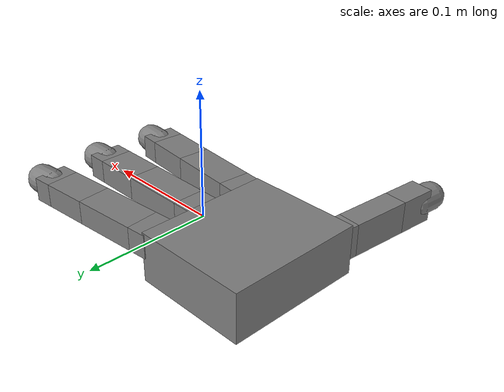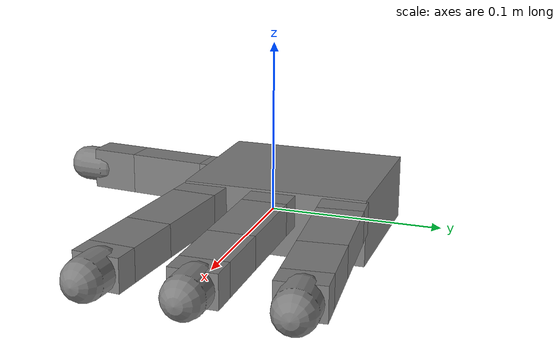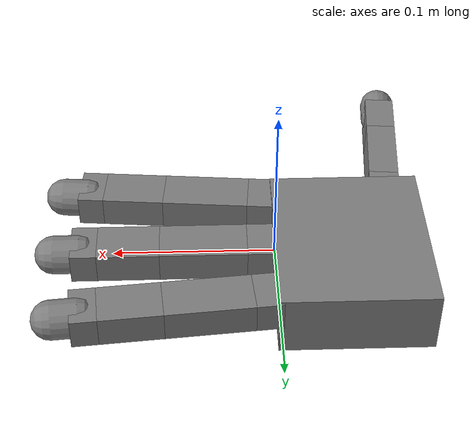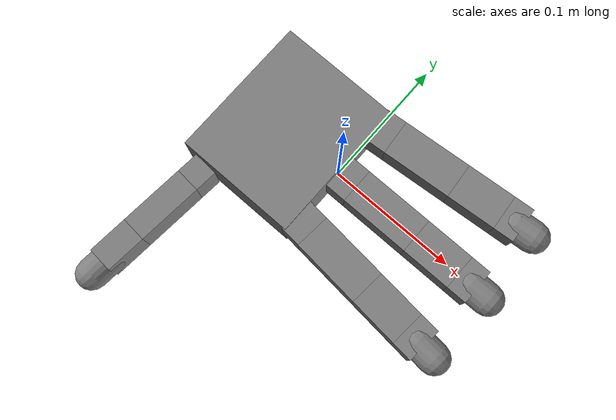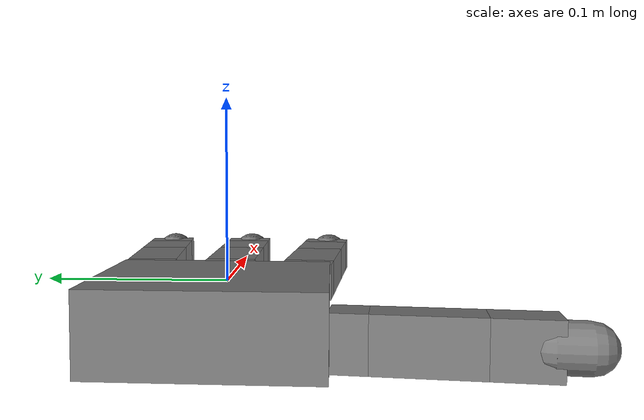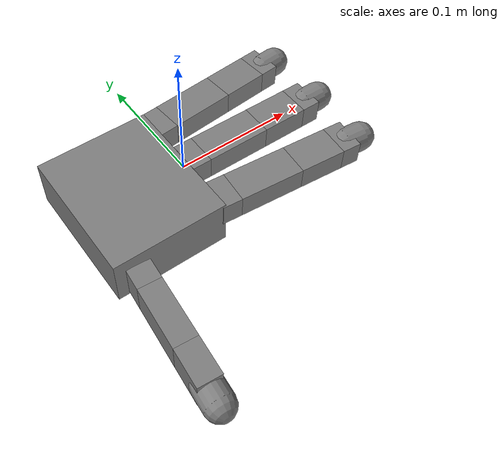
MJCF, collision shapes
<mujoco model="allegro_right">
  <compiler angle="radian" meshdir="assets" autolimits="true"/>

  <option cone="elliptic" impratio="10"/>

  <default>
    <default class="allegro_right">
      <joint axis="0 1 0" damping=".1"/>
      <position kp="1"/>
      <geom density="800"/>

      <default class="visual">
        <geom type="mesh" contype="0" conaffinity="0" group="2" material="black"/>
        <default class="palm_visual">
          <geom mesh="base_link"/>
        </default>
        <default class="base_visual">
          <geom mesh="link_0.0"/>
        </default>
        <default class="proximal_visual">
          <geom mesh="link_1.0"/>
        </default>
        <default class="medial_visual">
          <geom mesh="link_2.0"/>
        </default>
        <default class="distal_visual">
          <geom mesh="link_3.0"/>
        </default>
        <default class="fingertip_visual">
          <geom pos="0 0 0.0267" material="white" mesh="link_3.0_tip"/>
        </default>
        <default class="thumbtip_visual">
          <geom pos="0 0 0.0423" material="white" mesh="link_15.0_tip"/>
        </default>
      </default>

      <default class="collision">
        <geom group="3" type="box" mass="0"/>
        <default class="palm_collision">
          <geom size="0.0204 0.0565 0.0475" pos="-0.0093 0 -0.0475"/>
        </default>
        <default class="base_collision">
          <geom size="0.0098 0.01375 0.0082" pos="0 0 0.0082"/>
          <default class="thumb_base_collision">
            <geom size="0.0179 0.017 0.02275" pos="-0.0179 0.009 0.0145"/>
          </default>
        </default>
        <default class="proximal_collision">
          <geom size="0.0098 0.01375 0.027" pos="0 0 0.027"/>
          <default class="thumb_proximal_collision">
            <geom size="0.0098 0.01375 0.00885" pos="0 0 0.00885"/>
          </default>
        </default>
        <default class="medial_collision">
          <geom size="0.0098 0.01375 0.0192" pos="0 0 0.0192"/>
          <default class="thumb_medial_collision">
            <geom size="0.0098 0.01375 0.0257" pos="0 0 0.0257"/>
          </default>
        </default>
        <default class="distal_collision">
          <geom size="0.0098 0.01375 0.008" pos="0 0 0.008"/>
          <default class="thumb_distal_collision">
            <geom size="0.0098 0.01375 0.0157" pos="0 0 0.0157"/>
          </default>
        </default>
        <default class="fingertip_collision">
          <geom type="capsule" size="0.012 0.01" pos="0 0 0.019"/>
          <default class="thumbtip_collision">
            <geom type="capsule" size="0.012 0.008" pos="0 0 0.035"/>
          </default>
        </default>
      </default>
      <!-- Contact Models -->
      <default class="soft_finger">
        <geom type="capsule" size="0.012 0.008" contype="1" conaffinity="1"
              friction="1 0.005 0.0001" solref="0.02 1" solimp="0.95 0.95 0.01"/>
      </default>

      <default class="hard_finger">
        <geom type="capsule" size="0.012 0.008" contype="1" conaffinity="1"
              friction="1 0.005 0.0001" solref="0.002 1" solimp="0.95 0.95 0.001"/>
      </default>

      <default class="frictionless_finger">
        <geom type="capsule" size="0.012 0.008" contype="1" conaffinity="1"
              friction="0 0 0" solref="0.02 1" solimp="0.95 0.95 0.01"/>
      </default>

      <default class="base">
        <joint axis="0 0 1" range="-0.47 0.47"/>
        <position ctrlrange="-0.47 0.47"/>
      </default>
      <default class="proximal">
        <joint range="-0.196 1.61"/>
        <position ctrlrange="-0.196 1.61"/>
      </default>
      <default class="medial">
        <joint range="-0.174 1.709"/>
        <position ctrlrange="-0.174 1.709"/>
      </default>
      <default class="distal">
        <joint range="-0.227 1.618"/>
        <position ctrlrange="-0.227 1.618"/>
      </default>
      <default class="thumb_base">
        <joint axis="-1 0 0" range="0.263 1.396"/>
        <position ctrlrange="0.263 1.396"/>
      </default>
      <default class="thumb_proximal">
        <joint axis="0 0 1" range="-0.105 1.163"/>
        <position ctrlrange="-0.105 1.163"/>
      </default>
      <default class="thumb_medial">
        <joint range="-0.189 1.644"/>
        <position ctrlrange="-0.189 1.644"/>
      </default>
      <default class="thumb_distal">
        <joint range="-0.162 1.719"/>
        <position ctrlrange="-0.162 1.719"/>
      </default>
    </default>
  </default>

  <asset>
    <material name="black" rgba="0.2 0.2 0.2 1"/>
    <material name="white" rgba="0.9 0.9 0.9 1"/>

    <mesh file="base_link.stl"/>
    <mesh file="link_0.0.stl"/>
    <mesh file="link_1.0.stl"/>
    <mesh file="link_2.0.stl"/>
    <mesh file="link_3.0.stl"/>
    <mesh file="link_3.0_tip.stl"/>
    <mesh file="link_12.0_right.stl"/>
    <mesh file="link_13.0.stl"/>
    <mesh file="link_14.0.stl"/>
    <mesh file="link_15.0.stl"/>
    <mesh file="link_15.0_tip.stl"/>
  </asset>

  <worldbody>
        <!-- 添加新的基座body包含滑动关节 -->
    <body name="hand_base">
      <joint name="z_slide" type="slide" axis="0 0 1" damping="20" limited="true" range="-0.5 0.5"/>
      <!--joint name="z_lock"type="lock" limited="false"/-->
    	<body name="palm" quat="0 1 0 1" childclass="allegro_right">
      <geom class="palm_visual" mesh="base_link"/>
      <geom class="palm_collision"/>
      <!-- First finger -->
      <body name="ff_base" pos="0 0.0435 -0.001542" quat="0.999048 -0.0436194 0 0">
        <joint name="ffj0" class="base"/>
        <geom class="base_visual"/>
        <geom class="base_collision"/>
        <body name="ff_proximal" pos="0 0 0.0164">
          <joint name="ffj1" class="proximal"/>
          <geom class="proximal_visual"/>
          <geom class="proximal_collision"/>
          <body name="ff_medial" pos="0 0 0.054">
            <joint name="ffj2" class="medial"/>
            <geom class="medial_visual"/>
            <geom class="medial_collision"/>
            <body name="ff_distal" pos="0 0 0.0384">
              <joint name="ffj3" class="distal"/>
              <geom class="distal_visual"/>
              <geom class="distal_collision"/>
              <body name="ff_tip">
                <geom class="fingertip_visual"/>
                <geom class="soft_finger" pos="0 0 0.019"/>
              </body>
            </body>
          </body>
        </body>
      </body>
      <!-- Middle finger -->
      <body name="mf_base" pos="0 0 0.0007">
        <joint name="mfj0" class="base"/>
        <geom class="base_visual"/>
        <geom class="base_collision"/>
        <body name="mf_proximal" pos="0 0 0.0164">
          <joint name="mfj1" class="proximal"/>
          <geom class="proximal_visual"/>
          <geom class="proximal_collision"/>
          <body name="mf_medial" pos="0 0 0.054">
            <joint name="mfj2" class="medial"/>
            <geom class="medial_visual"/>
            <geom class="medial_collision"/>
            <body name="mf_distal" pos="0 0 0.0384">
              <joint name="mfj3" class="distal"/>
              <geom class="distal_visual"/>
              <geom class="distal_collision"/>
              <body name="mf_tip">
                <geom class="fingertip_visual"/>
                <geom class="soft_finger" pos="0 0 0.019"/>
              </body>
            </body>
          </body>
        </body>
      </body>
      <!-- Ring finger -->
      <body name="rf_base" pos="0 -0.0435 -0.001542" quat="0.999048 0.0436194 0 0">
        <joint name="rfj0" class="base"/>
        <geom class="base_visual"/>
        <geom class="base_collision"/>
        <body name="rf_proximal" pos="0 0 0.0164">
          <joint name="rfj1" class="proximal"/>
          <geom class="proximal_visual"/>
          <geom class="proximal_collision"/>
          <body name="rf_medial" pos="0 0 0.054">
            <joint name="rfj2" class="medial"/>
            <geom class="medial_visual"/>
            <geom class="medial_collision"/>
            <body name="rf_distal" pos="0 0 0.0384">
              <joint name="rfj3" class="distal"/>
              <geom class="distal_visual"/>
              <geom class="distal_collision"/>
              <body name="rf_tip">
                <geom class="fingertip_visual"/>
                <geom class="soft_finger" pos="0 0 0.019"/>
              </body>
            </body>
          </body>
        </body>
      </body>
      <!-- Thumb -->
      <body name="th_base" pos="-0.0182 0.019333 -0.045987" quat="0.477714 -0.521334 -0.521334 -0.477714">
        <joint name="thj0" class="thumb_base"/>
        <geom class="visual" mesh="link_12.0_right"/>
        <geom class="thumb_base_collision"/>
        <body name="th_proximal" pos="-0.027 0.005 0.0399">
          <joint name="thj1" class="thumb_proximal"/>
          <geom class="visual" mesh="link_13.0"/>
          <geom class="thumb_proximal_collision"/>
          <body name="th_medial" pos="0 0 0.0177">
            <joint name="thj2" class="thumb_medial"/>
            <geom class="visual" mesh="link_14.0"/>
            <geom class="thumb_medial_collision"/>
            <body name="th_distal" pos="0 0 0.0514">
              <joint name="thj3" class="thumb_distal"/>
              <geom class="visual" mesh="link_15.0"/>
              <geom class="thumb_distal_collision"/>
              <body name="th_tip">
                <geom class="thumbtip_visual"/>
                <geom class="soft_finger" pos="0 0 0.035"/>
              </body>
            </body>
          </body>
        </body>
      </body>
      </body>
    </body>
  </worldbody>

  <contact>
    <exclude body1="palm" body2="ff_base"/>
    <exclude body1="palm" body2="mf_base"/>
    <exclude body1="palm" body2="rf_base"/>
    <exclude body1="palm" body2="th_base"/>
    <exclude body1="palm" body2="th_proximal"/>
  </contact>

  <actuator>
    <position name="z_axis" joint="z_slide" kp="500"/>
    <!--position name="z_lock" joint="z_slide" kp="10000" ctrlrange="0 0"/-->
    <position name="ffa0" joint="ffj0" kp="100"/>
    <position name="ffa1" joint="ffj1" kp="100"/>
    <position name="ffa2" joint="ffj2" kp="100"/>
    <position name="ffa3" joint="ffj3" kp="100"/>
    <position name="mfa0" joint="mfj0" kp="100"/>
    <position name="mfa1" joint="mfj1" kp="100"/>
    <position name="mfa2" joint="mfj2" kp="100"/>
    <position name="mfa3" joint="mfj3" kp="100"/>
    <position name="rfa0" joint="rfj0" kp="100"/>
    <position name="rfa1" joint="rfj1" kp="100"/>
    <position name="rfa2" joint="rfj2" kp="100"/>
    <position name="rfa3" joint="rfj3" kp="100"/>
    <position name="tha0" joint="thj0" kp="100"/>
    <position name="tha1" joint="thj1" kp="100"/>
    <position name="tha2" joint="thj2" kp="100"/>
    <position name="tha3" joint="thj3" kp="100"/>
  </actuator>
   <sensor>
    <jointpos name="z_position" joint="z_slide"/>
    <user name="lock_status" needstage="vel" dim="1"/>
  </sensor>
</mujoco>
